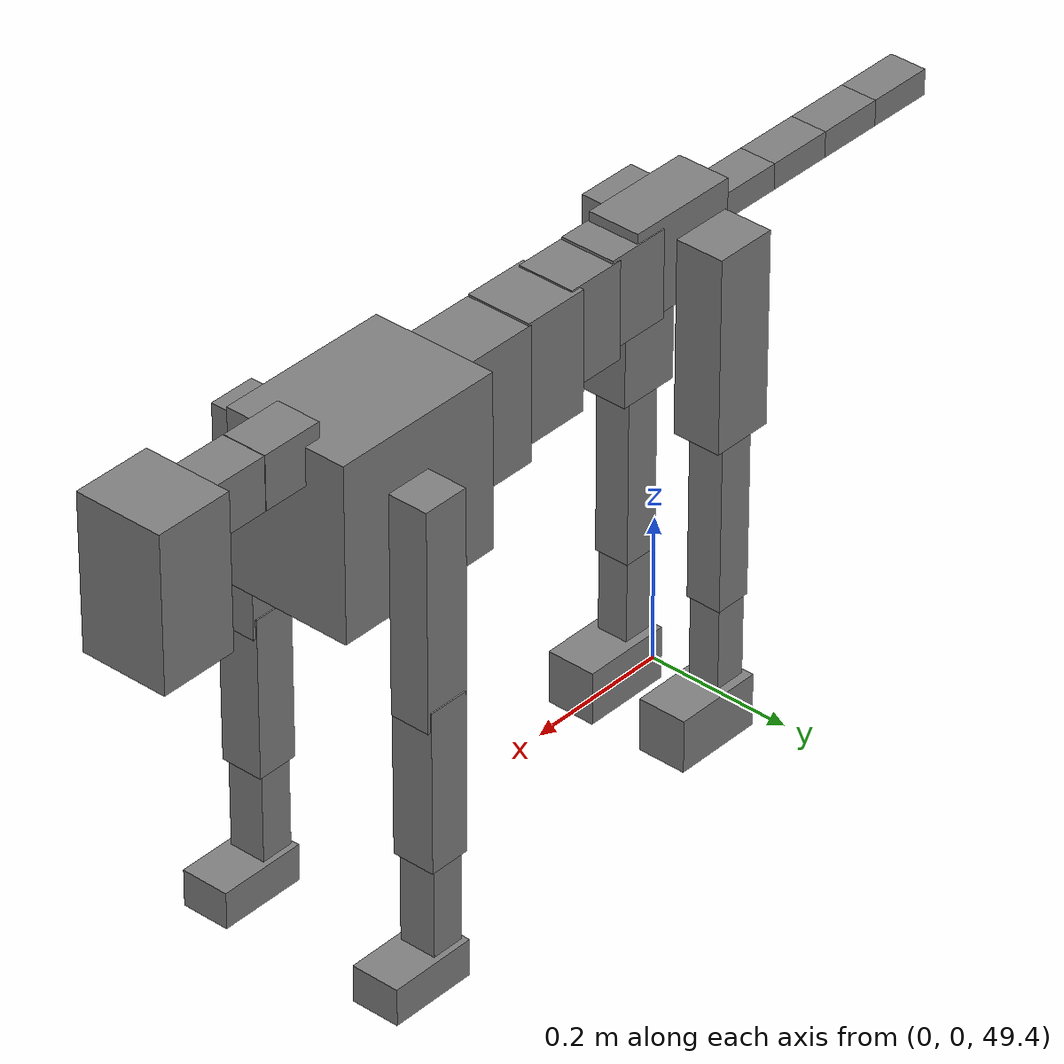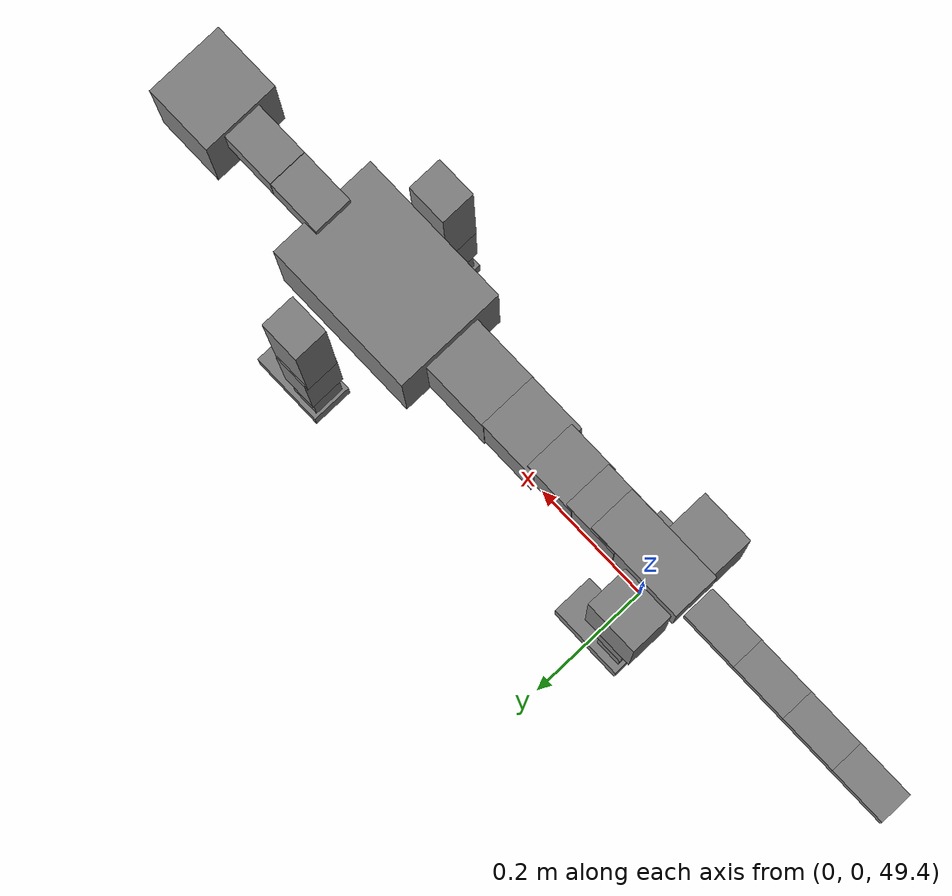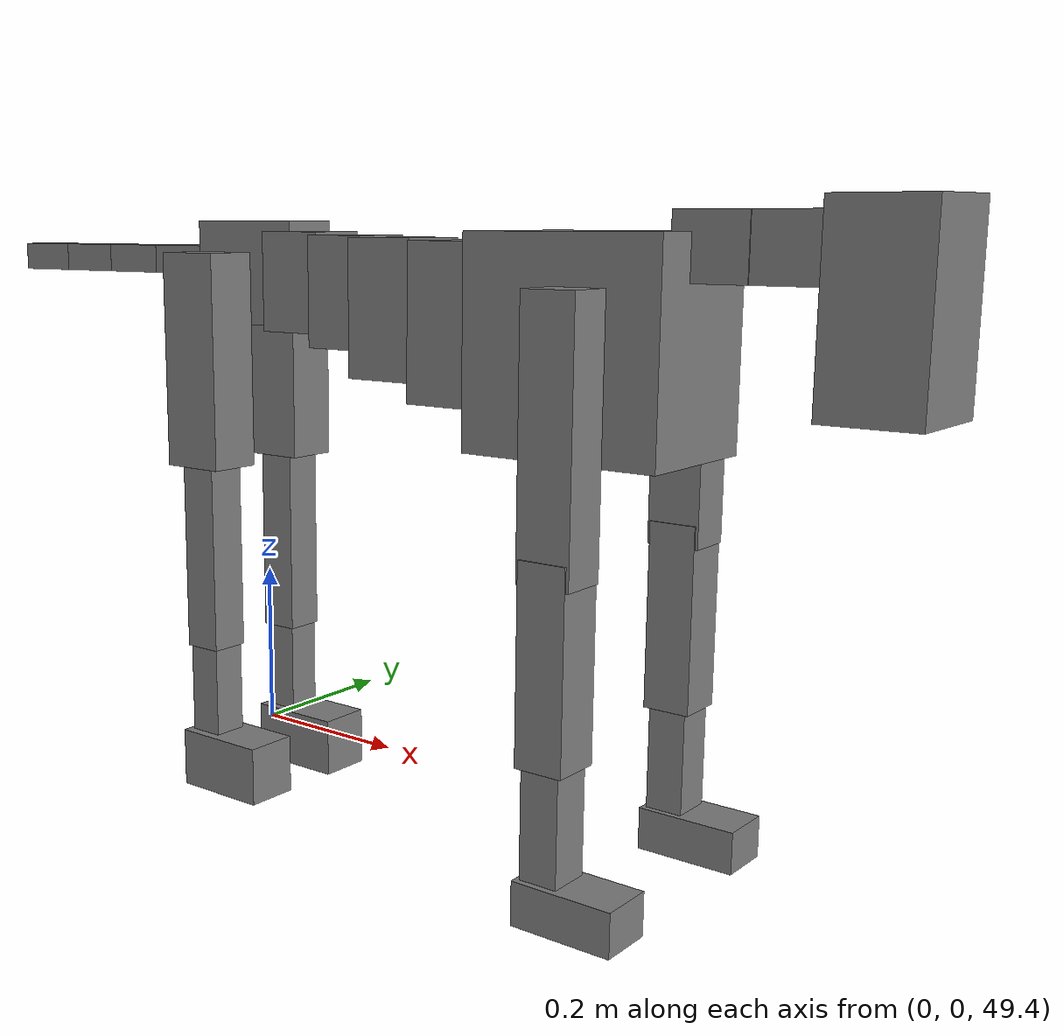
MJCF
<mujoco model="dog">

    <default>
        <joint armature="0.02" stiffness="1" damping="0.2" limited="true"/>
        <geom condim="3" friction="1 0.05 0.05" margin="0.01"/>
        <motor ctrllimited="true" ctrlrange="-1.0 1.0" forcelimited="true" gear="50"/>
    </default>

    <compiler inertiafromgeom="true" angle="radian"/>

    <option timestep="0.016" iterations="50" tolerance="1e-10" solver="Newton" jacobian="dense" cone="pyramidal"/>

    <size nconmax="20000" njmax="60000" nstack="5000000"/>
    <visual>
        <map force="0.1" zfar="30"/>
        <rgba haze="0.15 0.25 0.35 1"/>
        <quality shadowsize="2048"/>
        <global offwidth="800" offheight="800"/>
    </visual>

    <asset>
        <texture type="skybox" builtin="gradient" rgb1="0.3 0.5 0.7" rgb2="0 0 0" width="512" height="512"/>
        <texture name="texplane" type="2d" builtin="checker" rgb1=".2 .3 .4" rgb2=".1 0.15 0.2" width="512" height="512"
                 mark="cross" markrgb=".8 .8 .8"/>
        <texture name="texgeom" type="cube" builtin="flat" mark="cross" width="127" height="1278" rgb1="0.8 0.6 0.4"
                 rgb2="0.8 0.6 0.4" markrgb="1 1 1" random="0.01"/>

        <material name="matplane" reflectance="0.3" texture="texplane" texrepeat="1 1" texuniform="true"/>
        <material name="matgeom" texture="texgeom" texuniform="true" rgba="0.8 0.6 .4 1"/>
    </asset>

    <worldbody>
        <geom name="floor" pos="0 0 0" size="0 0 .25" type="plane" material="matplane" condim="3"/>

        <light directional="false" diffuse=".2 .2 .2" specular="0 0 0" pos="0 0 5" dir="0 0 -1" castshadow="false"/>
        <light mode="targetbodycom" target="torso" directional="false" diffuse=".8 .8 .8" specular="0.3 0.3 0.3"
               pos="0 0 4.0" dir="0 0 -1"/>

        <body name="root" pos="0 0 50">
            <freejoint name="root_1"/>
            <geom type="box" pos="0 0 -0.02" size="0.0774  0.0358  0.063" density="2030"/>

            <body name="spine1" pos="0.054 0 0">
                <joint name="spine1_y" axis="0 1 0" range="0 0.7" limited="true"/>
                <geom type="box" pos="0.02375 0 -0.03" size="0.04375  0.0375  0.05985" density="2030"/>

                <body name="spine2" pos="0.0612 0 0">
                    <joint name="spine2_y" axis="0 1 0" range="-0.15 0.15" limited="true"/>
                    <geom type="box" pos="0.03555  0  -0.04" size="0.04055  0.039  0.06615" density="2030"/>

                    <body name="spine3" pos="0.0730 0 0">
                        <joint name="spine3_y" axis="0 1 0" range="-0.15 0.15" limited="true"/>
                        <geom type="box" pos="0.03555  0  -0.057" size="0.04555  0.0445  0.081" density="2030"/>

                        <body name="spine4" pos="0.0780 0 0">
                            <joint name="spine4_y" axis="0 1 0" range="-0.15 0.15" limited="true"/>
                            <geom type="box" pos="0.05265  0  -0.07" size="0.05265  0.045  0.09135" density="2030"/>

                            <body name="torso" pos="0.1082 0 0">
                                <joint name="torso_y" axis="0 1 0" range="-0.15 0.15" limited="true"/>
                                <geom type="box" pos="0.11925  0  -0.085" size="0.11925  0.085  0.11745"
                                      density="2030"/>

                                <body name="neck1" pos="0.2160  0   0.0180">
                                    <joint name="neck1_y" axis="0 1 0" range="-1.2  -1" limited="true"/>
                                    <geom type="box" pos="0.0423  0  0" size="0.0423  0.03  0.036" density="2325"/>

                                    <body name="neck2" pos="0.0853  0  0">
                                        <joint name="neck2_y" axis="0 1 0" range="0.1  0" limited="true"/>
                                        <geom type="box" pos="0.0423  0  0" size="0.0423  0.03  0.036" density="2325"/>

                                        <body name="head" pos="0.0853  0  0">
                                            <joint name="head_y" axis="0 1 0" range="-0.3  -0.2" limited="true"/>
                                            <geom type="box" pos="0.0531  0  -0.055" size="0.0531  0.06  0.1044"
                                                  density="4030"/>

                                        </body>
                                    </body>
                                </body>

                                <body name="front_shoulder" pos="0.156  0   -0.0480">
                                    <joint name="front_shoulder_y" axis="0 1 0" range="-1 1.5" limited="true"/>
                                    <geom type="box" pos="0 0.13 -0.1206" size="0.0317  0.0271  0.1473" density="1158"/>
                                    <geom type="box" pos="0 -0.13 -0.1206" size="0.0317  0.0271  0.1473"
                                          density="1158"/>

                                    <body name="front_elbow" pos="0  0  -0.2413">
                                        <joint name="front_elbow_y" axis="0 1 0" range="-2 0" limited="true"/>
                                        <geom type="box" pos="0 0.13 -0.1101" size="0.0284  0.0290  0.1101"
                                              density="1081"/>
                                        <geom type="box" pos="0 -0.13 -0.1101" size="0.0284  0.0290  0.1101"
                                              density="1081"/>

                                        <body name="front_wrist" pos="0  0  -0.2203">
                                            <joint name="front_wrist_y" axis="0 1 0" range="-0.2 0" limited="true"/>
                                            <geom type="box" pos="0 0.13 -0.0687" size="0.0227  0.0252  0.0819"
                                                  density="1664"/>
                                            <geom type="box" pos="0 -0.13 -0.0687" size="0.0227  0.0252  0.0819"
                                                  density="1664"/>

                                            <body name="front_finger_end" pos="0  0  -0.1375">
                                                <joint name="front_finger_y" axis="0 1 0" range="-0.4 1"
                                                       limited="true"/>
                                                <geom type="box" pos="0.0329  0.13  -0.0102"
                                                      size="0.0603  0.0329  0.0252" density="1515"/>
                                                <geom type="box" pos="0.0329  -0.13  -0.0102"
                                                      size="0.0603  0.0329  0.0252" density="1515"/>

                                            </body>

                                        </body>
                                    </body>
                                </body>

                            </body>
                        </body>
                    </body>
                </body>
            </body>

            <body name="back_hip" pos="-0.03 0 -0.018">
                <joint name="back_hip_y" axis="0 1 0" range="-1.5 0.3" limited="true"/>
                <geom type="box" pos="0 0.07 -0.1087" size="0.0420  0.0330  0.1315" density="1154"/>
                <geom type="box" pos="0 -0.07 -0.1087" size="0.0420  0.0330  0.1315" density="1154"/>

                <body name="back_knee" pos="0  0  -0.2175">
                    <joint name="back_knee_y" axis="0 1 0" range="0 2.8" limited="true"/>
                    <geom type="box" pos="0 0.07 -0.1205" size="0.0247  0.0244  0.1360" density="1227"/>
                    <geom type="box" pos="0 -0.07 -0.1205" size="0.0247  0.0244  0.1360" density="1227"/>

                    <body name="back_ankle" pos="0  0  -0.2409">
                        <joint name="back_ankle_y" axis="0 1 0" range="-2.2 0" limited="true"/>
                        <geom type="box" pos="0 0.07 -0.0718" size="0.0218  0.0218  0.0830" density="1284"/>
                        <geom type="box" pos="0 -0.07 -0.0718" size="0.0218  0.0218  0.0830" density="1284"/>

                        <body name="back_toe_end" pos="0  0  -0.1435">
                            <joint name="back_toe_y" axis="0 1 0" range="-0.4 1" limited="true"/>
                            <geom type="box" pos="0.0337  0.07  -0.0216" size="0.0618  0.0337  0.0366" density="1515"/>
                            <geom type="box" pos="0.0337  -0.07  -0.0216" size="0.0618  0.0337  0.0366" density="1515"/>

                        </body>
                    </body>
                </body>
            </body>

            <body name="tail1" pos="-0.074 0 -0.006">
                <joint name="tail1_y" axis="0 1 0" range="-0.2 0.2" limited="true"/>
                <geom type="box" pos="-0.0536  0  0" size="0.045  0.025  0.0175" density="1587"/>

                <body name="tail2" pos="-0.09 0 0">
                    <joint name="tail2_y" axis="0 1 0" range="-0.2 0.2" limited="true"/>
                    <geom type="box" pos="-0.0536  0  0" size="0.045  0.025  0.0175" density="1587"/>

                    <body name="tail3" pos="-0.09 0 0">
                        <joint name="tail3_y" axis="0 1 0" range="-0.2 0.2" limited="true"/>
                        <geom type="box" pos="-0.0536  0  0" size="0.045  0.025  0.0175" density="1587"/>

                        <body name="tail4" pos="-0.09 0 0">
                            <joint name="tail4_y" axis="0 1 0" range="-0.2 0.2" limited="true"/>
                            <geom type="box" pos="-0.0536  0  0" size="0.045  0.025  0.0175" density="1587"/>

                        </body>
                    </body>
                </body>
            </body>
        </body>
    </worldbody>

    <actuator>
        <motor joint="spine1_y" forcerange="-150 150     "/>
        <motor joint="spine2_y" forcerange="-150 150     "/>
        <motor joint="spine3_y" forcerange="-150 150     "/>
        <motor joint="spine4_y" forcerange="-150 150     "/>
        <motor joint="torso_y" forcerange="-150 150     "/>
        <motor joint="neck1_y" forcerange="-100 100       "/>
        <motor joint="neck2_y" forcerange="-100 100       "/>
        <motor joint="head_y" forcerange="-150 150       "/>
        <motor joint="front_shoulder_y" forcerange="-145.42 135.17"/>
        <motor joint="front_elbow_y" forcerange="-124.17 187.08"/>
        <motor joint="front_wrist_y" forcerange="-98.81 102.65"/>
        <motor joint="front_finger_y" forcerange="-52.03 83.28"/>
        <motor joint="back_hip_y" forcerange="-345.34 294.21"/>
        <motor joint="back_knee_y" forcerange="-277.60 277.16"/>
        <motor joint="back_angle_y" forcerange="-95.81 153.58"/>
        <motor joint="back_toe_y" forcerange="-118.09 71.38"/>
        <motor joint="tail1_y" forcerange="-50 50     "/>
        <motor joint="tail2_y" forcerange="-50 50     "/>
        <motor joint="tail3_y" forcerange="-50 50     "/>
        <motor joint="tail4_y" forcerange="-50 50     "/>
    </actuator>
</mujoco>
